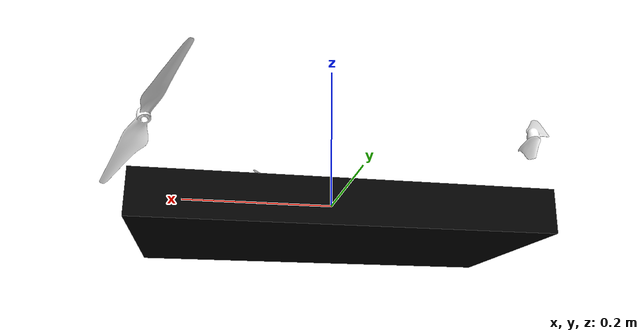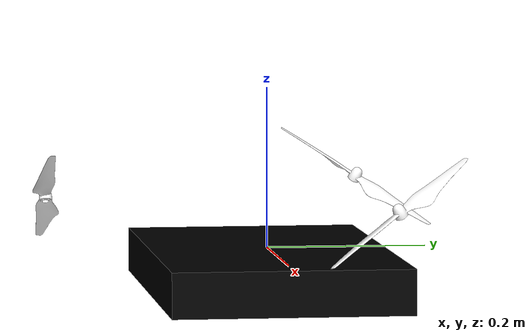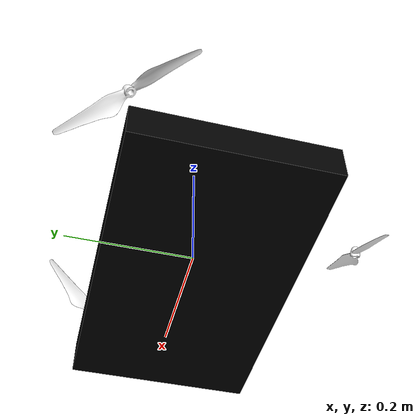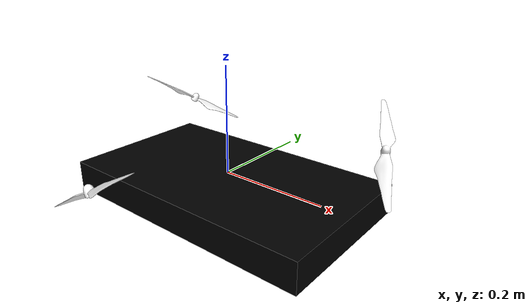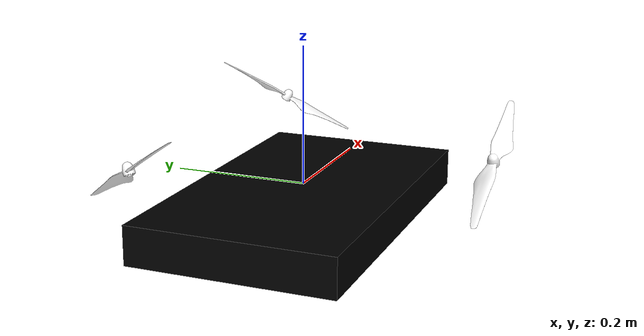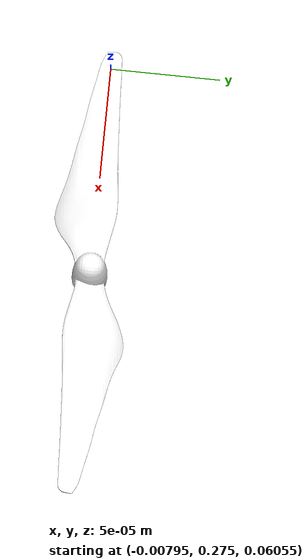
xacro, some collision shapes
<?xml version="1.0"?>

<robot name="f550_non_planar"
  xmlns:xacro="http://ros.org/wiki/xacro">

  <!-- Included URDF Files -->
  <xacro:include filename="$(find tobas_description)/urdf/components/multirotor_base.xacro"/>

  <!-- Properties: https://www.dji.com/jp/spreading-wings-f550_non_planar -->
  <xacro:property name="frame_radius" value="0.294"/>
  <xacro:property name="frame_height" value="0.056"/>
  <xacro:property name="frame_mass" value="1.615"/>
  <xacro:property name="propeller_diameter" value="${9*inch2meter}"/>
  <xacro:property name="propeller_radius" value="${propeller_diameter/2}"/>
  <xacro:property name="propeller_height" value="0.01"/>
  <xacro:property name="propeller_mass" value="0.011"/>
  <xacro:property name="propeller_origin_z" value="0.060597"/>
  <xacro:property name="rotor_tilt" value="${30*deg2rad}"/>

  <!-- Base Link -->
  <link name="base_link"/>

  <!-- Frame -->
  <joint name="frame_joint" type="fixed">
    <origin xyz="0 0 0" rpy="0 0 0"/>
    <parent link="base_link"/>
    <child link="frame"/>
  </joint>
  <link name="frame">
    <visual>
      <origin xyz="0 0 0" rpy="0 0 0"/>
      <geometry>
        <mesh filename="package://tobas_description/meshes/f550_non_planar/frame.stl" scale="1e-3 1e-3 1e-3"/>
      </geometry>
      <xacro:insert_block name="black"/>
    </visual>
    <inertial>
      <mass value="${frame_mass}"/>
      <origin xyz="5.5e-4 1.04e-3 9.895e-3" rpy="0 0 0"/>
      <inertia ixx="3.720e-2" ixy="4.6919e-8" ixz="-6.275258e-6" iyy="3.725e-2" iyz="-5.9311674e-5" izz="7.102e-2"/>
    </inertial>
    <xacro:hexagonal_prism_collision side="${frame_radius}" height="${frame_height}" x0="0" y0="0" z0="${-frame_height/2}"/>
  </link>

  <!-- Propellers -->
  <xacro:macro name="propeller" params="index direction *origin">
    <joint name="propeller_${index}_joint" type="continuous">
      <xacro:insert_block name="origin"/>
      <axis xyz="0 0 1"/>
      <parent link="base_link"/>
      <child link="propeller_${index}"/>
    </joint>
    <link name="propeller_${index}">
      <visual>
        <geometry>
          <mesh filename="package://tobas_description/meshes/f550_non_planar/phantom3_0945_${direction}.stl" scale="1e-3 1e-3 1e-3"/>
        </geometry>
        <xacro:insert_block name="white"/>
      </visual>
      <inertial>
        <mass value="${propeller_mass}"/>
        <origin xyz="0 0 ${propeller_height/2}" rpy="0 0 0"/>
        <xacro:cylinder_inertia radius="${propeller_radius}" length="${propeller_height}" mass="${propeller_mass}"/>
      </inertial>
      <collision>
        <origin xyz="0 0 ${propeller_height/2}" rpy="0 0 0"/>
        <geometry>
          <cylinder radius="${propeller_radius}" length="${propeller_height}"/>
        </geometry>
      </collision>
    </link>
  </xacro:macro>

  <xacro:propeller index="0" direction="ccw">
    <origin xyz="0.242082 0.130702 ${propeller_origin_z}" rpy="${rotor_tilt} 0 ${30*deg2rad}"/>
  </xacro:propeller>
  <xacro:propeller index="1" direction="cw">
    <origin xyz="-0.007851 0.27500 ${propeller_origin_z}" rpy="${-rotor_tilt} 0 ${90*deg2rad}"/>
  </xacro:propeller>
  <xacro:propeller index="2" direction="ccw">
    <origin xyz="-0.234232 0.144298 ${propeller_origin_z}" rpy="${rotor_tilt} 0 ${150*deg2rad}"/>
  </xacro:propeller>
  <xacro:propeller index="3" direction="cw">
    <origin xyz="-0.234232 -0.144645 ${propeller_origin_z}" rpy="${-rotor_tilt} 0 ${210*deg2rad}"/>
  </xacro:propeller>
  <xacro:propeller index="4" direction="ccw">
    <origin xyz="-0.007851 -0.27500 ${propeller_origin_z}" rpy="${rotor_tilt} 0 ${270*deg2rad}"/>
  </xacro:propeller>
  <xacro:propeller index="5" direction="cw">
    <origin xyz="0.242082 -0.130355 ${propeller_origin_z}" rpy="${-rotor_tilt} 0 ${330*deg2rad}"/>
  </xacro:propeller>

</robot>

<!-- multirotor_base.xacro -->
<robot xmlns:xacro="http://ros.org/wiki/xacro">

  <xacro:include filename="$(find tobas_description)/urdf/components/common.xacro"/>

  <!-- Main multirotor link -->
  <xacro:macro name="multirotor_base_macro" params="
      robot_namespace
      mass
      body_width
      body_height
      use_mesh_file
      mesh_file
      *inertia">
    <link name="${robot_namespace}/base_link"></link>

    <joint name="${robot_namespace}/base_joint" type="fixed">
      <origin xyz="0 0 0" rpy="0 0 0"/>
      <parent link="${robot_namespace}/base_link"/>
      <child link="${robot_namespace}/base_link_inertia"/>
    </joint>

    <link name="${robot_namespace}/base_link_inertia">
      <inertial>
        <mass value="${mass}"/>
        <origin xyz="0 0 0"/>
        <xacro:insert_block name="inertia"/>
      </inertial>

      <visual>
        <origin xyz="0 0 0" rpy="0 0 0"/>
        <geometry>
          <xacro:if value="${use_mesh_file}">
            <mesh filename="${mesh_file}" scale="1 1 1"/>
          </xacro:if>
          <xacro:unless value="${use_mesh_file}">
            <box size="${body_width} ${body_width} ${body_height}"/>
          </xacro:unless>
        </geometry>
      </visual>

      <collision>
        <origin xyz="0 0 0" rpy="0 0 0"/>
        <geometry>
          <box size="${body_width} ${body_width} ${body_height}"/>
        </geometry>
      </collision>
    </link>
  </xacro:macro>

  <!-- Rotor joint and link -->
  <xacro:macro name="vertical_rotor" params="
      robot_namespace
      direction
      parent
      mass_rotor
      radius_rotor
      motor_number
      use_own_mesh
      mesh
      *origin
      *inertia
      *material">
    <joint name="${robot_namespace}/rotor_${motor_number}_joint" type="continuous">
      <xacro:insert_block name="origin"/>
      <axis xyz="0 0 1"/>
      <parent link="${parent}"/>
      <child link="${robot_namespace}/rotor_${motor_number}"/>
    </joint>

    <link name="${robot_namespace}/rotor_${motor_number}">
      <inertial>
        <mass value="${mass_rotor}"/>
        <xacro:insert_block name="inertia"/>
      </inertial>
      <visual>
        <geometry>
          <xacro:if value="${use_own_mesh}">
            <mesh filename="${mesh}" scale="1 1 1"/>
          </xacro:if>
          <xacro:unless value="${use_own_mesh}">
            <mesh filename="package://tobas_description/meshes/propeller_${direction}.dae" scale="${radius_rotor} ${radius_rotor} ${radius_rotor}"/>
          </xacro:unless>
        </geometry>
        <xacro:insert_block name="material"/>
      </visual>
      <collision>
        <geometry>
          <cylinder length="0.005" radius="${radius_rotor}"/>
        </geometry>
      </collision>
    </link>
  </xacro:macro>

  <!-- Virtual frame for visualization -->
  <xacro:macro name="virtual_frame" params="parent name *origin">
    <joint name="${name}_joint" type="fixed">
      <xacro:insert_block name="origin"/>
      <parent link="${parent}"/>
      <child link="${name}_link"/>
    </joint>

    <link name="${name}_link">
      <inertial>
        <mass value="1e-9"/>
        <inertia ixx="1e-9" ixy="0" ixz="0" iyy="1e-9" iyz="0" izz="1e-9"/>
      </inertial>
      <visual>
        <geometry>
          <box size="1e-3 1e-3 1e-3"/>
        </geometry>
        <xacro:insert_block name="red"/>
      </visual>
      <collision>
        <geometry>
          <box size="1e-3 1e-3 1e-3"/>
        </geometry>
      </collision>
    </link>
  </xacro:macro>

</robot>

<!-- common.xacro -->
<robot xmlns:xacro="http://ros.org/wiki/xacro">

  <!-- Constants -->
  <xacro:property name="sqrt2" value="1.4142135623730951"/>
  <xacro:property name="sqrt3" value="1.73205080757"/>
  <xacro:property name="sin30" value="0.5"/>
  <xacro:property name="cos30" value="${sqrt3 / 2}"/>
  <xacro:property name="sin45" value="${1 / sqrt2}"/>
  <xacro:property name="cos45" value="${sin45}"/>
  <xacro:property name="sin60" value="${cos30}"/>
  <xacro:property name="cos60" value="${sin30}"/>
  <xacro:property name="deg2rad" value="${pi / 180}"/>
  <xacro:property name="rad2deg" value="${180 / pi}"/>
  <xacro:property name="inch2meter" value="0.0254"/>

  <!-- Colors -->
  <xacro:property name="black">
    <material name="black">
      <color rgba="0 0 0 1"/>
    </material>
  </xacro:property>
  <xacro:property name="white">
    <material name="white">
      <color rgba="1 1 1 1"/>
    </material>
  </xacro:property>
  <xacro:property name="gray">
    <material name="gray">
      <color rgba="0.5 0.5 0.5 1"/>
    </material>
  </xacro:property>
  <xacro:property name="red">
    <material name="red">
      <color rgba="1 0 0 1"/>
    </material>
  </xacro:property>
  <xacro:property name="green">
    <material name="green">
      <color rgba="0 1 0 1"/>
    </material>
  </xacro:property>
  <xacro:property name="blue">
    <material name="blue">
      <color rgba="0 0 1 1"/>
    </material>
  </xacro:property>
  <xacro:property name="yellow">
    <material name="yellow">
      <color rgba="1 1 0 1"/>
    </material>
  </xacro:property>
  <xacro:property name="orange">
    <material name="orange">
      <color rgba="${255/255} ${108/255} ${10/255} 1"/>
    </material>
  </xacro:property>
  <xacro:property name="brown">
    <material name="brown">
      <color rgba="${222/255} ${207/255} ${195/255} 1"/>
    </material>
  </xacro:property>

  <!-- Collisions -->
  <xacro:macro name="hexagonal_prism_collision" params="side height x0 y0 z0">
    <collision>
      <origin xyz="${x0} ${y0} ${z0}" rpy="0 0 0"/>
      <geometry>
        <box size="${sqrt3 * side} ${side} ${height}"/>
      </geometry>
    </collision>
    <collision>
      <origin xyz="${x0} ${y0} ${z0}" rpy="0 0 ${60*deg2rad}"/>
      <geometry>
        <box size="${sqrt3 * side} ${side} ${height}"/>
      </geometry>
    </collision>
    <collision>
      <origin xyz="${x0} ${y0} ${z0}" rpy="0 0 ${-60*deg2rad}"/>
      <geometry>
        <box size="${sqrt3 * side} ${side} ${height}"/>
      </geometry>
    </collision>
  </xacro:macro>

  <!-- Inertia wrt. CoM of primitive shapes -->
  <xacro:macro name="box_inertia" params="x y z mass">
    <inertia ixx="${mass * (y*y + z*z) / 12}" ixy="0.0" ixz="0.0" iyy="${mass * (x*x + z*z) / 12}" iyz="0.0" izz="${mass * (x*x + y*y) / 12}"/>
  </xacro:macro>
  <xacro:macro name="cylinder_inertia" params="radius length mass">
    <inertia ixx="${mass*radius*radius/4 + mass*length*length/12}" ixy="0.0" ixz="0.0" iyy="${mass*radius*radius/4 + mass*length*length/12}" iyz="0.0" izz="${mass*radius*radius/2}"/>
  </xacro:macro>
  <xacro:macro name="sphere_inertia" params="radius mass">
    <inertia ixx="${0.4 * mass * radius*radius}" ixy="0.0" ixz="0.0" iyy="${0.4 * mass * radius*radius}" iyz="0.0" izz="${0.4 * mass * radius*radius}"/>
  </xacro:macro>

  <!-- Macro for the inertial properties of a box -->
  <xacro:macro name="box_inertial" params="x y z mass *origin">
    <inertial>
      <mass value="${mass}"/>
      <xacro:insert_block name="origin"/>
      <xacro:box_inertia x="${x}" y="${y}" z="${z}" mass="${mass}"/>
    </inertial>
  </xacro:macro>

</robot>
